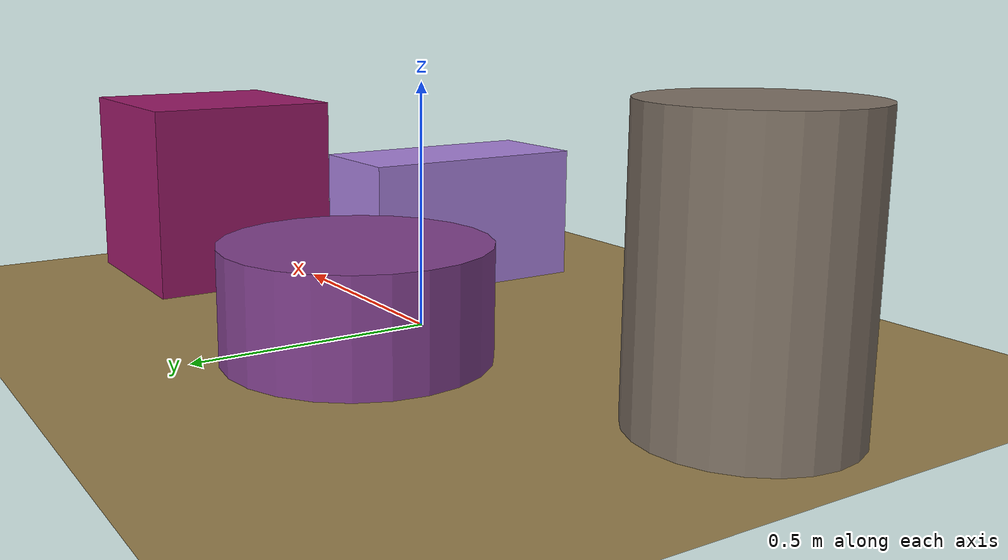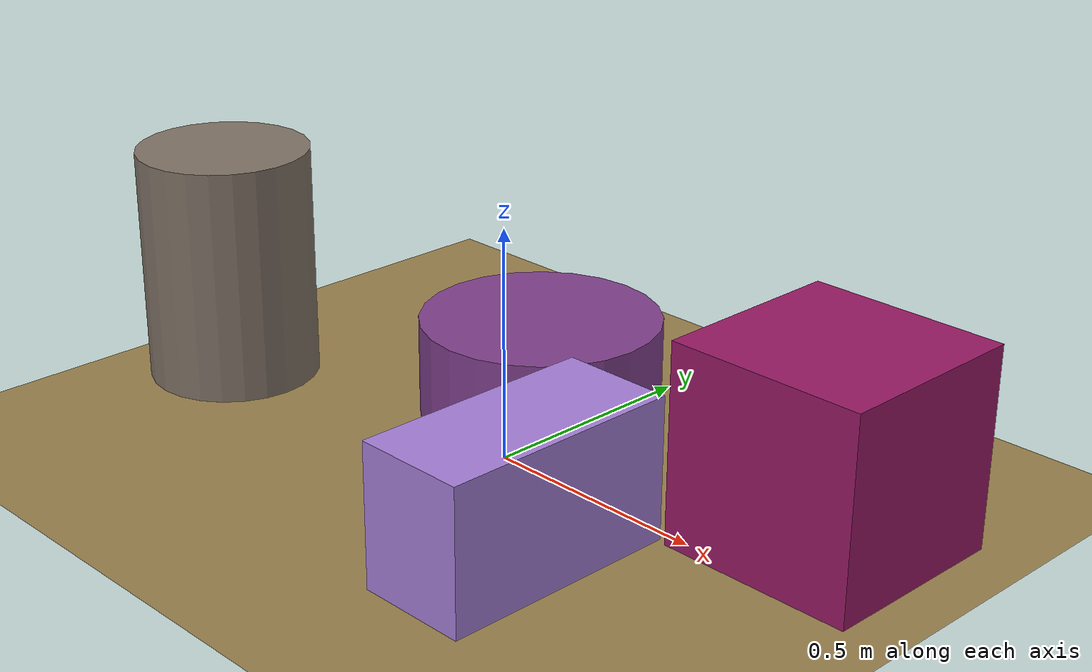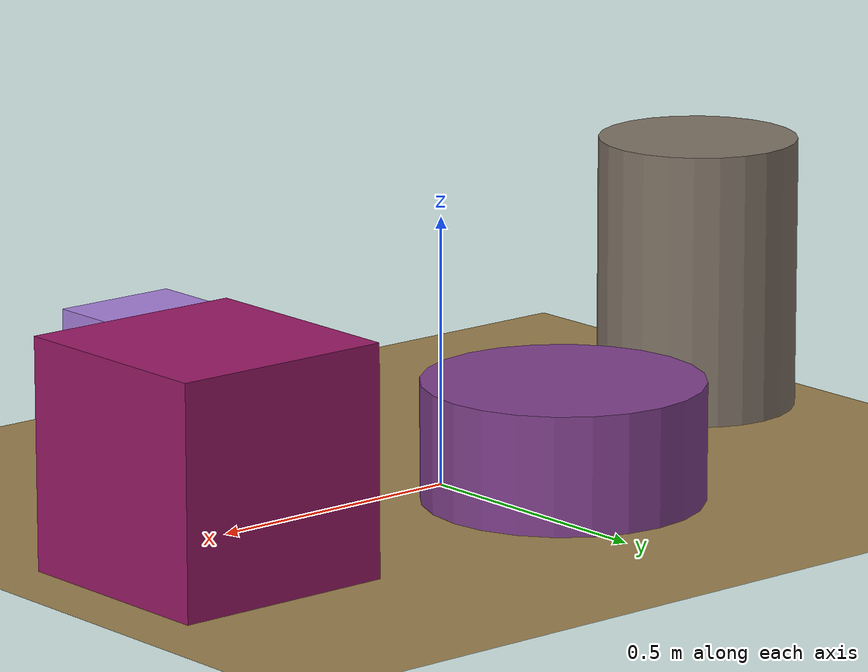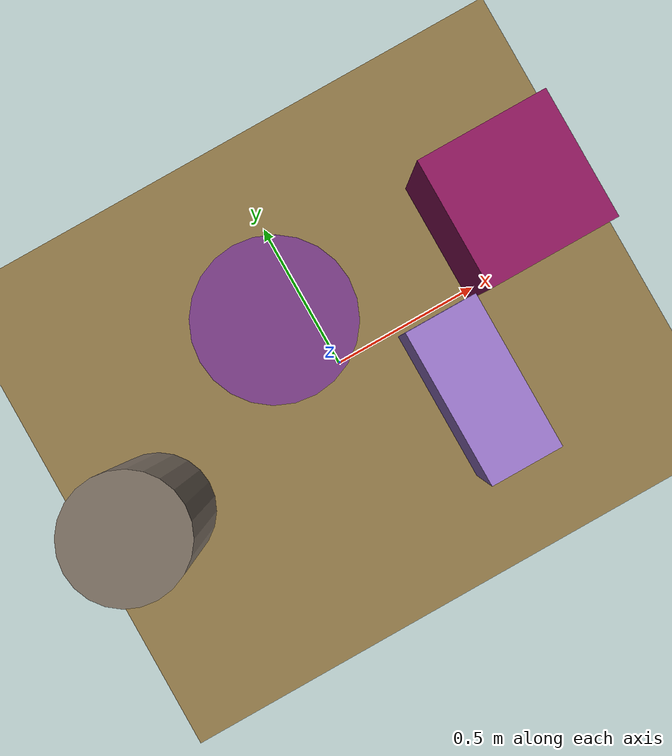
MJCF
<mujoco>
   <asset>
<texture type="skybox" builtin="gradient" rgb1="0.9 0.7 0.4" rgb2="0.3 0.8 0.2" width="256" height="256"/>
<texture name="gradient_0" builtin="gradient" rgb1="0.5 0.3 0.3" rgb2="0.5 0.2 0.8" width="200" height="200"/>
<texture name="flat_1" builtin="flat" rgb1="0.6 0.1 0.4" rgb2="0.6 0.1 0.4"  width="200" height="200"/>
<texture name="gradient_2" builtin="gradient" rgb1="0.7 0.2 0.0" rgb2="0.3 0.7 0.8" width="200" height="200"/>
<texture name="gradient_3" builtin="gradient" rgb1="0.8 0.3 0.7" rgb2="0.5 0.7 1.0" width="200" height="200"/><material name="gradient_0_mat" reflectance="0" texture="gradient_0" texuniform="true"/>
<material name="flat_1_mat" reflectance="0" texture="flat_1" texuniform="true"/>
<material name="gradient_2_mat" reflectance="0" texture="gradient_2" texuniform="true"/>
<material name="gradient_3_mat" reflectance="0" texture="gradient_3" texuniform="true"/>
   </asset>

   <worldbody>
      <light diffuse=".9 .9 .9" pos="0 0 3" dir="0 0 -1"/>
     <geom type="plane" size="1 1 0.1" rgba="0.6 0.5 0.3 1"/>
<geom type="cylinder" pos="-0.11 0.21 0.11" size="0.26 0.11 0.11" material="gradient_0_mat" />
<geom type="box" pos="0.68 0.18 0.21" size="0.21 0.21 0.21" material="flat_1_mat" />
<geom type="cylinder" pos="-0.75 -0.13 0.26" size="0.19 0.26 0.26" material="gradient_2_mat" />
<geom type="box" pos="0.33 -0.28 0.15" size="0.12 0.26 0.15" material="gradient_3_mat" /><camera euler="60 0 180" fovy="60" name="camera_a" pos="0 -1.5 1"></camera>   </worldbody>
</mujoco>
